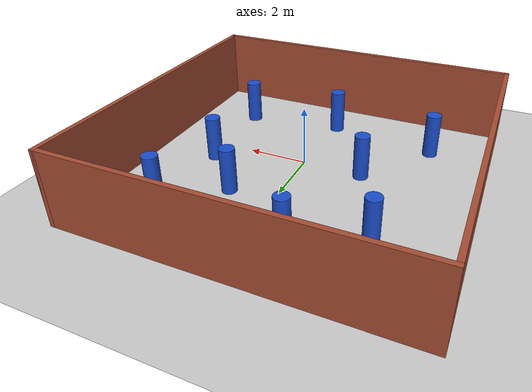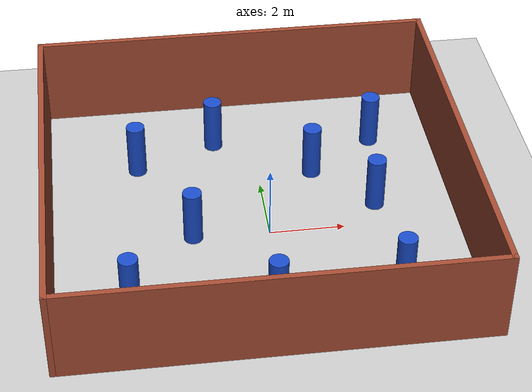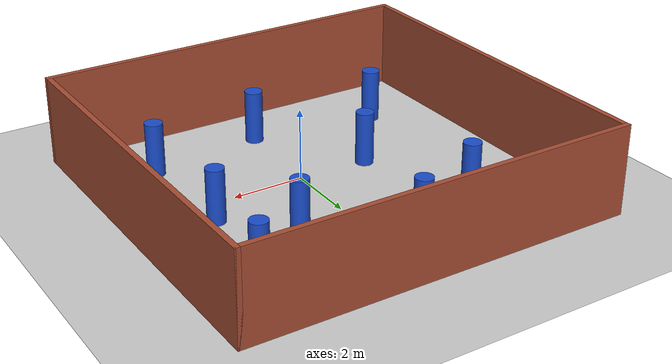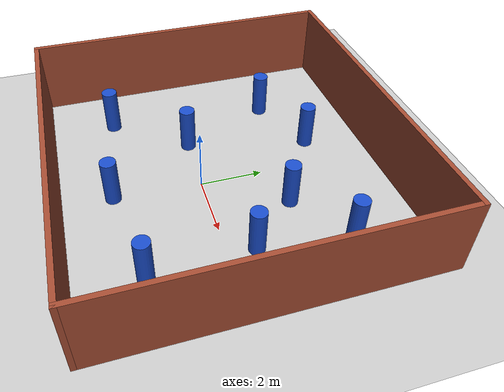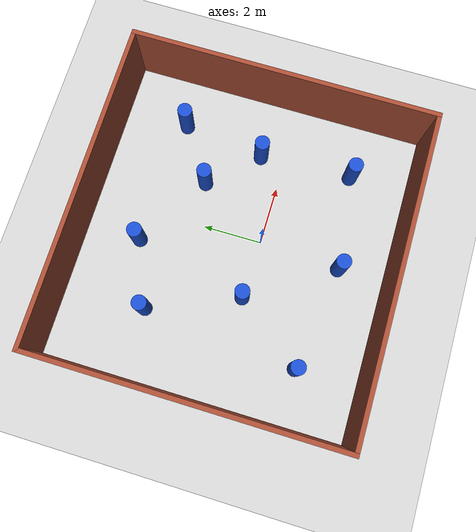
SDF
<sdf version="1.7">
 <world name="default">
  <light name="sun" type="directional">
   <pose>0 0 10 0 -0 0</pose>
   <diffuse>0.8 0.8 0.8 1</diffuse>
   <specular>0.2 0.2 0.2 1</specular>
   <attenuation>
    <range>1000</range>
    <constant>0.9</constant>
    <linear>0.01</linear>
    <quadratic>0.001</quadratic>
   </attenuation>
   <direction>-0.5 0.1 -0.9</direction>
   <spot><inner_angle>0</inner_angle><outer_angle>0</outer_angle><falloff>0</falloff></spot>
  </light>
  <model name="ground_plane">
   <static>1</static>
   <link name="link">
    <collision name="collision">
     <geometry><plane><normal>0 0 1</normal><size>100 100</size></plane></geometry>
     <surface><friction><ode><mu>100</mu><mu2>50</mu2></ode></friction></surface>
    </collision>
    <visual name="visual">
     <cast_shadows>0</cast_shadows>
     <geometry><plane><normal>0 0 1</normal><size>100 100</size></plane></geometry>
     <material>
      <script><uri>file://media/materials/scripts/gazebo.material</uri><name>Gazebo/Grey</name></script>
     </material>
    </visual>
   </link>
  </model>
  <gravity>0 0 -9.8</gravity>
  <magnetic_field>6e-06 2.3e-05 -4.2e-05</magnetic_field>
  <atmosphere type="adiabatic"/>
  <physics type="ode">
   <max_step_size>0.001</max_step_size>
   <real_time_factor>1</real_time_factor>
   <real_time_update_rate>1000</real_time_update_rate>
  </physics>
  <scene><ambient>0.4 0.4 0.4 1</ambient><background>0.7 0.7 0.7 1</background><shadows>1</shadows></scene>
  <audio><device>default</device></audio>
  <spherical_coordinates>
   <surface_model>EARTH_WGS84</surface_model>
   <latitude_deg>0</latitude_deg>
   <longitude_deg>0</longitude_deg>
   <elevation>0</elevation>
   <heading_deg>0</heading_deg>
  </spherical_coordinates>
  <model name="env">
   <pose>-0.305097 0.758471 0 0 -0 0</pose>
   <link name="Wall_1">
    <collision name="Wall_1_Collision">
     <geometry><box><size>11 0.15 2.5</size></box></geometry>
     <pose>0 0 1.25 0 -0 0</pose>
    </collision>
    <visual name="Wall_1_Visual">
     <pose>0 0 1.25 0 -0 0</pose>
     <geometry><box><size>11 0.15 2.5</size></box></geometry>
     <material>
      <script><uri>file://media/materials/scripts/gazebo.material</uri><name>Gazebo/Bricks</name></script>
      <ambient>1 1 1 1</ambient>
     </material>
     <meta><layer>0</layer></meta>
    </visual>
    <pose>0 5.175 0 0 -0 0</pose>
   </link>
   <link name="Wall_3">
    <collision name="Wall_3_Collision">
     <geometry><box><size>10.5 0.15 2.5</size></box></geometry>
     <pose>0 0 1.25 0 -0 0</pose>
    </collision>
    <visual name="Wall_3_Visual">
     <pose>0 0 1.25 0 -0 0</pose>
     <geometry><box><size>10.5 0.15 2.5</size></box></geometry>
     <material>
      <script><uri>file://media/materials/scripts/gazebo.material</uri><name>Gazebo/Bricks</name></script>
      <ambient>1 1 1 1</ambient>
     </material>
     <meta><layer>0</layer></meta>
    </visual>
    <pose>5.425 0 0 0 -0 -1.5708</pose>
   </link>
   <link name="Wall_7">
    <collision name="Wall_7_Collision">
     <geometry><box><size>11 0.15 2.5</size></box></geometry>
     <pose>0 0 1.25 0 -0 0</pose>
    </collision>
    <visual name="Wall_7_Visual">
     <pose>0 0 1.25 0 -0 0</pose>
     <geometry><box><size>11 0.15 2.5</size></box></geometry>
     <material>
      <script><uri>file://media/materials/scripts/gazebo.material</uri><name>Gazebo/Bricks</name></script>
      <ambient>1 1 1 1</ambient>
     </material>
     <meta><layer>0</layer></meta>
    </visual>
    <pose>0 -5.175 0 0 -0 3.14159</pose>
   </link>
   <link name="Wall_8">
    <collision name="Wall_8_Collision">
     <geometry><box><size>10.5 0.15 2.5</size></box></geometry>
     <pose>0 0 1.25 0 -0 0</pose>
    </collision>
    <visual name="Wall_8_Visual">
     <pose>0 0 1.25 0 -0 0</pose>
     <geometry><box><size>10.5 0.15 2.5</size></box></geometry>
     <material>
      <script><uri>file://media/materials/scripts/gazebo.material</uri><name>Gazebo/Bricks</name></script>
      <ambient>1 1 1 1</ambient>
     </material>
     <meta><layer>0</layer></meta>
    </visual>
    <pose>-5.425 0 0 0 -0 1.5708</pose>
   </link>
   <static>1</static>
  </model>
  <model name="pillars">
   <static>true</static>
   <link name="link_0">
    <inertial>
     <mass>1</mass>
     <inertia><ixx>0.145833</ixx><ixy>0</ixy><ixz>0</ixz><iyy>0.145833</iyy><iyz>0</iyz><izz>0.125</izz></inertia>
    </inertial>
    <pose>1.42178 1.68235 0 0 -0 0</pose>
    <visual name="visual">
     <geometry><cylinder><radius>0.25</radius><length>2</length></cylinder></geometry>
     <material>
      <lighting>1</lighting>
      <script><uri>file://media/materials/scripts/gazebo.material</uri><name>Gazebo/Grey</name></script>
      <shader type="pixel"><normal_map>__default__</normal_map></shader>
      <ambient>0.1 0.3 0.8 1</ambient>
      <diffuse>0.7 0.7 0.7 1</diffuse>
      <specular>0.01 0.01 0.01 1</specular>
      <emissive>0 0 0 1</emissive>
     </material>
    </visual>
    <collision name="collision">
     <geometry><cylinder><radius>0.25</radius><length>2</length></cylinder></geometry>
     <surface>
      <friction>
       <ode><mu>1</mu><mu2>1</mu2><fdir1>0 0 0</fdir1><slip1>0</slip1><slip2>0</slip2></ode>
       <torsional>
        <coefficient>1</coefficient>
        <patch_radius>0</patch_radius>
        <surface_radius>0</surface_radius>
        <use_patch_radius>1</use_patch_radius>
        <ode><slip>0</slip></ode>
       </torsional>
      </friction>
      <bounce><restitution_coefficient>0</restitution_coefficient><threshold>1e+06</threshold></bounce>
      <contact>
       <collide_without_contact>0</collide_without_contact>
       <collide_without_contact_bitmask>1</collide_without_contact_bitmask>
       <collide_bitmask>1</collide_bitmask>
       <ode>
        <soft_cfm>0</soft_cfm>
        <soft_erp>0.2</soft_erp>
        <kp>1e+13</kp>
        <kd>1</kd>
        <max_vel>0.01</max_vel>
        <min_depth>0</min_depth>
       </ode>
       <bullet>
        <split_impulse>1</split_impulse>
        <split_impulse_penetration_threshold>-0.01</split_impulse_penetration_threshold>
        <soft_cfm>0</soft_cfm>
        <soft_erp>0.2</soft_erp>
        <kp>1e+13</kp>
        <kd>1</kd>
       </bullet>
      </contact>
     </surface>
    </collision>
   </link>
   <link name="link_0_clone">
    <inertial>
     <mass>1</mass>
     <inertia><ixx>0.145833</ixx><ixy>0</ixy><ixz>0</ixz><iyy>0.145833</iyy><iyz>0</iyz><izz>0.125</izz></inertia>
    </inertial>
    <pose>3.04705 -3.09047 0 0 -0 0</pose>
    <visual name="visual">
     <geometry><cylinder><radius>0.25</radius><length>2</length></cylinder></geometry>
     <material>
      <lighting>1</lighting>
      <script><uri>file://media/materials/scripts/gazebo.material</uri><name>Gazebo/Grey</name></script>
      <shader type="pixel"><normal_map>__default__</normal_map></shader>
      <ambient>0.1 0.3 0.8 1</ambient>
      <diffuse>0.7 0.7 0.7 1</diffuse>
      <specular>0.01 0.01 0.01 1</specular>
      <emissive>0 0 0 1</emissive>
     </material>
    </visual>
    <collision name="collision">
     <geometry><cylinder><radius>0.25</radius><length>2</length></cylinder></geometry>
     <surface>
      <friction>
       <ode><mu>1</mu><mu2>1</mu2><fdir1>0 0 0</fdir1><slip1>0</slip1><slip2>0</slip2></ode>
       <torsional>
        <coefficient>1</coefficient>
        <patch_radius>0</patch_radius>
        <surface_radius>0</surface_radius>
        <use_patch_radius>1</use_patch_radius>
        <ode><slip>0</slip></ode>
       </torsional>
      </friction>
      <bounce><restitution_coefficient>0</restitution_coefficient><threshold>1e+06</threshold></bounce>
      <contact>
       <collide_without_contact>0</collide_without_contact>
       <collide_without_contact_bitmask>1</collide_without_contact_bitmask>
       <collide_bitmask>1</collide_bitmask>
       <ode>
        <soft_cfm>0</soft_cfm>
        <soft_erp>0.2</soft_erp>
        <kp>1e+13</kp>
        <kd>1</kd>
        <max_vel>0.01</max_vel>
        <min_depth>0</min_depth>
       </ode>
       <bullet>
        <split_impulse>1</split_impulse>
        <split_impulse_penetration_threshold>-0.01</split_impulse_penetration_threshold>
        <soft_cfm>0</soft_cfm>
        <soft_erp>0.2</soft_erp>
        <kp>1e+13</kp>
        <kd>1</kd>
       </bullet>
      </contact>
     </surface>
    </collision>
   </link>
   <link name="link_0_clone_0">
    <inertial>
     <mass>1</mass>
     <inertia><ixx>0.145833</ixx><ixy>0</ixy><ixz>0</ixz><iyy>0.145833</iyy><iyz>0</iyz><izz>0.125</izz></inertia>
    </inertial>
    <pose>-3.84481 -3.00818 0 0 -0 0</pose>
    <visual name="visual">
     <geometry><cylinder><radius>0.25</radius><length>2</length></cylinder></geometry>
     <material>
      <lighting>1</lighting>
      <script><uri>file://media/materials/scripts/gazebo.material</uri><name>Gazebo/Grey</name></script>
      <shader type="pixel"><normal_map>__default__</normal_map></shader>
      <ambient>0.1 0.3 0.8 1</ambient>
      <diffuse>0.7 0.7 0.7 1</diffuse>
      <specular>0.01 0.01 0.01 1</specular>
      <emissive>0 0 0 1</emissive>
     </material>
    </visual>
    <collision name="collision">
     <geometry><cylinder><radius>0.25</radius><length>2</length></cylinder></geometry>
     <surface>
      <friction>
       <ode><mu>1</mu><mu2>1</mu2><fdir1>0 0 0</fdir1><slip1>0</slip1><slip2>0</slip2></ode>
       <torsional>
        <coefficient>1</coefficient>
        <patch_radius>0</patch_radius>
        <surface_radius>0</surface_radius>
        <use_patch_radius>1</use_patch_radius>
        <ode><slip>0</slip></ode>
       </torsional>
      </friction>
      <bounce><restitution_coefficient>0</restitution_coefficient><threshold>1e+06</threshold></bounce>
      <contact>
       <collide_without_contact>0</collide_without_contact>
       <collide_without_contact_bitmask>1</collide_without_contact_bitmask>
       <collide_bitmask>1</collide_bitmask>
       <ode>
        <soft_cfm>0</soft_cfm>
        <soft_erp>0.2</soft_erp>
        <kp>1e+13</kp>
        <kd>1</kd>
        <max_vel>0.01</max_vel>
        <min_depth>0</min_depth>
       </ode>
       <bullet>
        <split_impulse>1</split_impulse>
        <split_impulse_penetration_threshold>-0.01</split_impulse_penetration_threshold>
        <soft_cfm>0</soft_cfm>
        <soft_erp>0.2</soft_erp>
        <kp>1e+13</kp>
        <kd>1</kd>
       </bullet>
      </contact>
     </surface>
    </collision>
   </link>
   <link name="link_0_clone_1">
    <inertial>
     <mass>1</mass>
     <inertia><ixx>0.145833</ixx><ixy>0</ixy><ixz>0</ixz><iyy>0.145833</iyy><iyz>0</iyz><izz>0.125</izz></inertia>
    </inertial>
    <pose>-3.35106 2.34072 0 0 -0 0</pose>
    <visual name="visual">
     <geometry><cylinder><radius>0.25</radius><length>2</length></cylinder></geometry>
     <material>
      <lighting>1</lighting>
      <script><uri>file://media/materials/scripts/gazebo.material</uri><name>Gazebo/Grey</name></script>
      <shader type="pixel"><normal_map>__default__</normal_map></shader>
      <ambient>0.1 0.3 0.8 1</ambient>
      <diffuse>0.7 0.7 0.7 1</diffuse>
      <specular>0.01 0.01 0.01 1</specular>
      <emissive>0 0 0 1</emissive>
     </material>
    </visual>
    <collision name="collision">
     <geometry><cylinder><radius>0.25</radius><length>2</length></cylinder></geometry>
     <surface>
      <friction>
       <ode><mu>1</mu><mu2>1</mu2><fdir1>0 0 0</fdir1><slip1>0</slip1><slip2>0</slip2></ode>
       <torsional>
        <coefficient>1</coefficient>
        <patch_radius>0</patch_radius>
        <surface_radius>0</surface_radius>
        <use_patch_radius>1</use_patch_radius>
        <ode><slip>0</slip></ode>
       </torsional>
      </friction>
      <bounce><restitution_coefficient>0</restitution_coefficient><threshold>1e+06</threshold></bounce>
      <contact>
       <collide_without_contact>0</collide_without_contact>
       <collide_without_contact_bitmask>1</collide_without_contact_bitmask>
       <collide_bitmask>1</collide_bitmask>
       <ode>
        <soft_cfm>0</soft_cfm>
        <soft_erp>0.2</soft_erp>
        <kp>1e+13</kp>
        <kd>1</kd>
        <max_vel>0.01</max_vel>
        <min_depth>0</min_depth>
       </ode>
       <bullet>
        <split_impulse>1</split_impulse>
        <split_impulse_penetration_threshold>-0.01</split_impulse_penetration_threshold>
        <soft_cfm>0</soft_cfm>
        <soft_erp>0.2</soft_erp>
        <kp>1e+13</kp>
        <kd>1</kd>
       </bullet>
      </contact>
     </surface>
    </collision>
   </link>
   <link name="link_0_clone_2">
    <inertial>
     <mass>1</mass>
     <inertia><ixx>0.145833</ixx><ixy>0</ixy><ixz>0</ixz><iyy>0.145833</iyy><iyz>0</iyz><izz>0.125</izz></inertia>
    </inertial>
    <pose>-1.14978 3.24592 0 0 -0 0</pose>
    <visual name="visual">
     <geometry><cylinder><radius>0.25</radius><length>2</length></cylinder></geometry>
     <material>
      <lighting>1</lighting>
      <script><uri>file://media/materials/scripts/gazebo.material</uri><name>Gazebo/Grey</name></script>
      <shader type="pixel"><normal_map>__default__</normal_map></shader>
      <ambient>0.1 0.3 0.8 1</ambient>
      <diffuse>0.7 0.7 0.7 1</diffuse>
      <specular>0.01 0.01 0.01 1</specular>
      <emissive>0 0 0 1</emissive>
     </material>
    </visual>
    <collision name="collision">
     <geometry><cylinder><radius>0.25</radius><length>2</length></cylinder></geometry>
     <surface>
      <friction>
       <ode><mu>1</mu><mu2>1</mu2><fdir1>0 0 0</fdir1><slip1>0</slip1><slip2>0</slip2></ode>
       <torsional>
        <coefficient>1</coefficient>
        <patch_radius>0</patch_radius>
        <surface_radius>0</surface_radius>
        <use_patch_radius>1</use_patch_radius>
        <ode><slip>0</slip></ode>
       </torsional>
      </friction>
      <bounce><restitution_coefficient>0</restitution_coefficient><threshold>1e+06</threshold></bounce>
      <contact>
       <collide_without_contact>0</collide_without_contact>
       <collide_without_contact_bitmask>1</collide_without_contact_bitmask>
       <collide_bitmask>1</collide_bitmask>
       <ode>
        <soft_cfm>0</soft_cfm>
        <soft_erp>0.2</soft_erp>
        <kp>1e+13</kp>
        <kd>1</kd>
        <max_vel>0.01</max_vel>
        <min_depth>0</min_depth>
       </ode>
       <bullet>
        <split_impulse>1</split_impulse>
        <split_impulse_penetration_threshold>-0.01</split_impulse_penetration_threshold>
        <soft_cfm>0</soft_cfm>
        <soft_erp>0.2</soft_erp>
        <kp>1e+13</kp>
        <kd>1</kd>
       </bullet>
      </contact>
     </surface>
    </collision>
   </link>
   <link name="link_0_clone_3">
    <inertial>
     <mass>1</mass>
     <inertia><ixx>0.145833</ixx><ixy>0</ixy><ixz>0</ixz><iyy>0.145833</iyy><iyz>0</iyz><izz>0.125</izz></inertia>
    </inertial>
    <pose>-2.07556 -0.683465 0 0 -0 0</pose>
    <visual name="visual">
     <geometry><cylinder><radius>0.25</radius><length>2</length></cylinder></geometry>
     <material>
      <lighting>1</lighting>
      <script><uri>file://media/materials/scripts/gazebo.material</uri><name>Gazebo/Grey</name></script>
      <shader type="pixel"><normal_map>__default__</normal_map></shader>
      <ambient>0.1 0.3 0.8 1</ambient>
      <diffuse>0.7 0.7 0.7 1</diffuse>
      <specular>0.01 0.01 0.01 1</specular>
      <emissive>0 0 0 1</emissive>
     </material>
    </visual>
    <collision name="collision">
     <geometry><cylinder><radius>0.25</radius><length>2</length></cylinder></geometry>
     <surface>
      <friction>
       <ode><mu>1</mu><mu2>1</mu2><fdir1>0 0 0</fdir1><slip1>0</slip1><slip2>0</slip2></ode>
       <torsional>
        <coefficient>1</coefficient>
        <patch_radius>0</patch_radius>
        <surface_radius>0</surface_radius>
        <use_patch_radius>1</use_patch_radius>
        <ode><slip>0</slip></ode>
       </torsional>
      </friction>
      <bounce><restitution_coefficient>0</restitution_coefficient><threshold>1e+06</threshold></bounce>
      <contact>
       <collide_without_contact>0</collide_without_contact>
       <collide_without_contact_bitmask>1</collide_without_contact_bitmask>
       <collide_bitmask>1</collide_bitmask>
       <ode>
        <soft_cfm>0</soft_cfm>
        <soft_erp>0.2</soft_erp>
        <kp>1e+13</kp>
        <kd>1</kd>
        <max_vel>0.01</max_vel>
        <min_depth>0</min_depth>
       </ode>
       <bullet>
        <split_impulse>1</split_impulse>
        <split_impulse_penetration_threshold>-0.01</split_impulse_penetration_threshold>
        <soft_cfm>0</soft_cfm>
        <soft_erp>0.2</soft_erp>
        <kp>1e+13</kp>
        <kd>1</kd>
       </bullet>
      </contact>
     </surface>
    </collision>
   </link>
   <link name="link_0_clone_4">
    <inertial>
     <mass>1</mass>
     <inertia><ixx>0.145833</ixx><ixy>0</ixy><ixz>0</ixz><iyy>0.145833</iyy><iyz>0</iyz><izz>0.125</izz></inertia>
    </inertial>
    <pose>3.27335 2.93733 0 0 -0 0</pose>
    <visual name="visual">
     <geometry><cylinder><radius>0.25</radius><length>2</length></cylinder></geometry>
     <material>
      <lighting>1</lighting>
      <script><uri>file://media/materials/scripts/gazebo.material</uri><name>Gazebo/Grey</name></script>
      <shader type="pixel"><normal_map>__default__</normal_map></shader>
      <ambient>0.1 0.3 0.8 1</ambient>
      <diffuse>0.7 0.7 0.7 1</diffuse>
      <specular>0.01 0.01 0.01 1</specular>
      <emissive>0 0 0 1</emissive>
     </material>
    </visual>
    <collision name="collision">
     <geometry><cylinder><radius>0.25</radius><length>2</length></cylinder></geometry>
     <surface>
      <friction>
       <ode><mu>1</mu><mu2>1</mu2><fdir1>0 0 0</fdir1><slip1>0</slip1><slip2>0</slip2></ode>
       <torsional>
        <coefficient>1</coefficient>
        <patch_radius>0</patch_radius>
        <surface_radius>0</surface_radius>
        <use_patch_radius>1</use_patch_radius>
        <ode><slip>0</slip></ode>
       </torsional>
      </friction>
      <bounce><restitution_coefficient>0</restitution_coefficient><threshold>1e+06</threshold></bounce>
      <contact>
       <collide_without_contact>0</collide_without_contact>
       <collide_without_contact_bitmask>1</collide_without_contact_bitmask>
       <collide_bitmask>1</collide_bitmask>
       <ode>
        <soft_cfm>0</soft_cfm>
        <soft_erp>0.2</soft_erp>
        <kp>1e+13</kp>
        <kd>1</kd>
        <max_vel>0.01</max_vel>
        <min_depth>0</min_depth>
       </ode>
       <bullet>
        <split_impulse>1</split_impulse>
        <split_impulse_penetration_threshold>-0.01</split_impulse_penetration_threshold>
        <soft_cfm>0</soft_cfm>
        <soft_erp>0.2</soft_erp>
        <kp>1e+13</kp>
        <kd>1</kd>
       </bullet>
      </contact>
     </surface>
    </collision>
   </link>
   <link name="link_0_clone_5">
    <inertial>
     <mass>1</mass>
     <inertia><ixx>0.145833</ixx><ixy>0</ixy><ixz>0</ixz><iyy>0.145833</iyy><iyz>0</iyz><izz>0.125</izz></inertia>
    </inertial>
    <pose>-0.224012 -3.5225 0 0 -0 0</pose>
    <visual name="visual">
     <geometry><cylinder><radius>0.25</radius><length>2</length></cylinder></geometry>
     <material>
      <lighting>1</lighting>
      <script><uri>file://media/materials/scripts/gazebo.material</uri><name>Gazebo/Grey</name></script>
      <shader type="pixel"><normal_map>__default__</normal_map></shader>
      <ambient>0.1 0.3 0.8 1</ambient>
      <diffuse>0.7 0.7 0.7 1</diffuse>
      <specular>0.01 0.01 0.01 1</specular>
      <emissive>0 0 0 1</emissive>
     </material>
    </visual>
    <collision name="collision">
     <geometry><cylinder><radius>0.25</radius><length>2</length></cylinder></geometry>
     <surface>
      <friction>
       <ode><mu>1</mu><mu2>1</mu2><fdir1>0 0 0</fdir1><slip1>0</slip1><slip2>0</slip2></ode>
       <torsional>
        <coefficient>1</coefficient>
        <patch_radius>0</patch_radius>
        <surface_radius>0</surface_radius>
        <use_patch_radius>1</use_patch_radius>
        <ode><slip>0</slip></ode>
       </torsional>
      </friction>
      <bounce><restitution_coefficient>0</restitution_coefficient><threshold>1e+06</threshold></bounce>
      <contact>
       <collide_without_contact>0</collide_without_contact>
       <collide_without_contact_bitmask>1</collide_without_contact_bitmask>
       <collide_bitmask>1</collide_bitmask>
       <ode>
        <soft_cfm>0</soft_cfm>
        <soft_erp>0.2</soft_erp>
        <kp>1e+13</kp>
        <kd>1</kd>
        <max_vel>0.01</max_vel>
        <min_depth>0</min_depth>
       </ode>
       <bullet>
        <split_impulse>1</split_impulse>
        <split_impulse_penetration_threshold>-0.01</split_impulse_penetration_threshold>
        <soft_cfm>0</soft_cfm>
        <soft_erp>0.2</soft_erp>
        <kp>1e+13</kp>
        <kd>1</kd>
       </bullet>
      </contact>
     </surface>
    </collision>
   </link>
   <link name="link_0_clone_6">
    <inertial>
     <mass>1</mass>
     <inertia><ixx>0.145833</ixx><ixy>0</ixy><ixz>0</ixz><iyy>0.145833</iyy><iyz>0</iyz><izz>0.125</izz></inertia>
    </inertial>
    <pose>2.90304 0.098297 0 0 -0 0</pose>
    <visual name="visual">
     <geometry><cylinder><radius>0.25</radius><length>2</length></cylinder></geometry>
     <material>
      <lighting>1</lighting>
      <script><uri>file://media/materials/scripts/gazebo.material</uri><name>Gazebo/Grey</name></script>
      <shader type="pixel"><normal_map>__default__</normal_map></shader>
      <ambient>0.1 0.3 0.8 1</ambient>
      <diffuse>0.7 0.7 0.7 1</diffuse>
      <specular>0.01 0.01 0.01 1</specular>
      <emissive>0 0 0 1</emissive>
     </material>
    </visual>
    <collision name="collision">
     <geometry><cylinder><radius>0.25</radius><length>2</length></cylinder></geometry>
     <surface>
      <friction>
       <ode><mu>1</mu><mu2>1</mu2><fdir1>0 0 0</fdir1><slip1>0</slip1><slip2>0</slip2></ode>
       <torsional>
        <coefficient>1</coefficient>
        <patch_radius>0</patch_radius>
        <surface_radius>0</surface_radius>
        <use_patch_radius>1</use_patch_radius>
        <ode><slip>0</slip></ode>
       </torsional>
      </friction>
      <bounce><restitution_coefficient>0</restitution_coefficient><threshold>1e+06</threshold></bounce>
      <contact>
       <collide_without_contact>0</collide_without_contact>
       <collide_without_contact_bitmask>1</collide_without_contact_bitmask>
       <collide_bitmask>1</collide_bitmask>
       <ode>
        <soft_cfm>0</soft_cfm>
        <soft_erp>0.2</soft_erp>
        <kp>1e+13</kp>
        <kd>1</kd>
        <max_vel>0.01</max_vel>
        <min_depth>0</min_depth>
       </ode>
       <bullet>
        <split_impulse>1</split_impulse>
        <split_impulse_penetration_threshold>-0.01</split_impulse_penetration_threshold>
        <soft_cfm>0</soft_cfm>
        <soft_erp>0.2</soft_erp>
        <kp>1e+13</kp>
        <kd>1</kd>
       </bullet>
      </contact>
     </surface>
    </collision>
   </link>
   <static>0</static>
   <pose>0.067921 0.74606 0.5 0 -0 0</pose>
  </model>
 </world>
</sdf>
